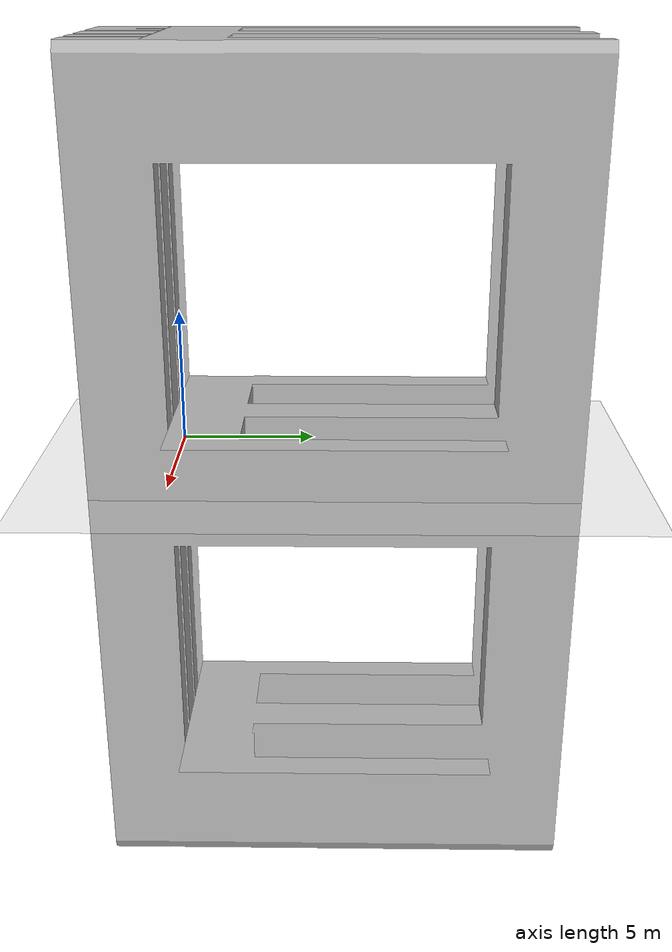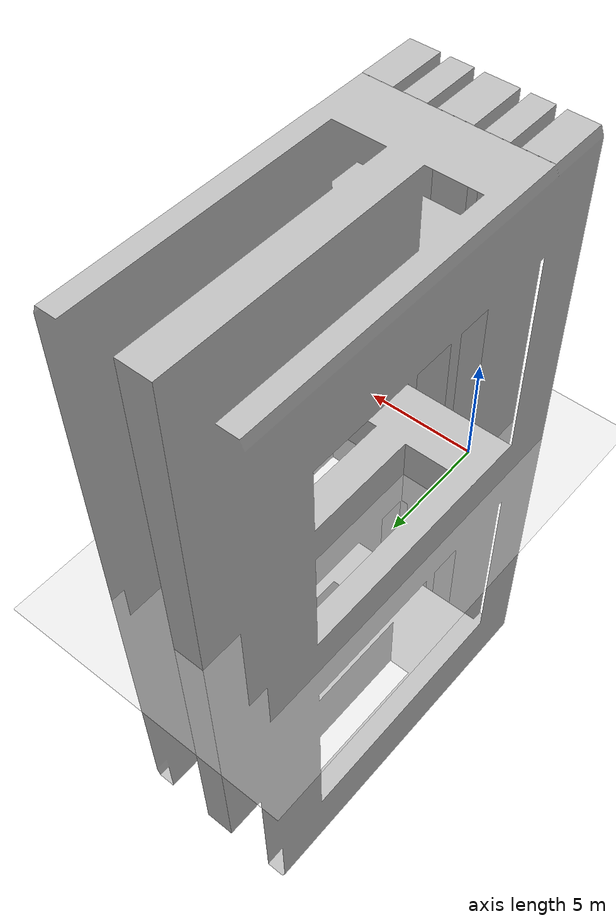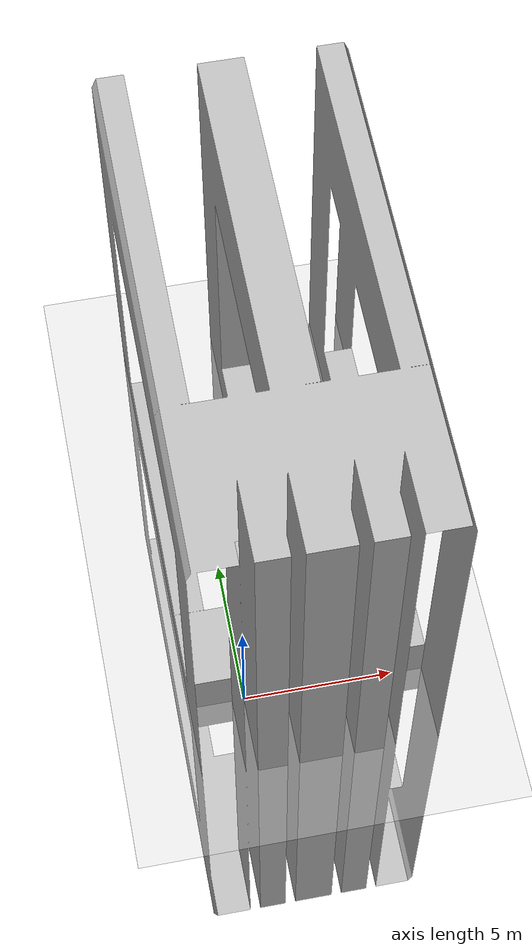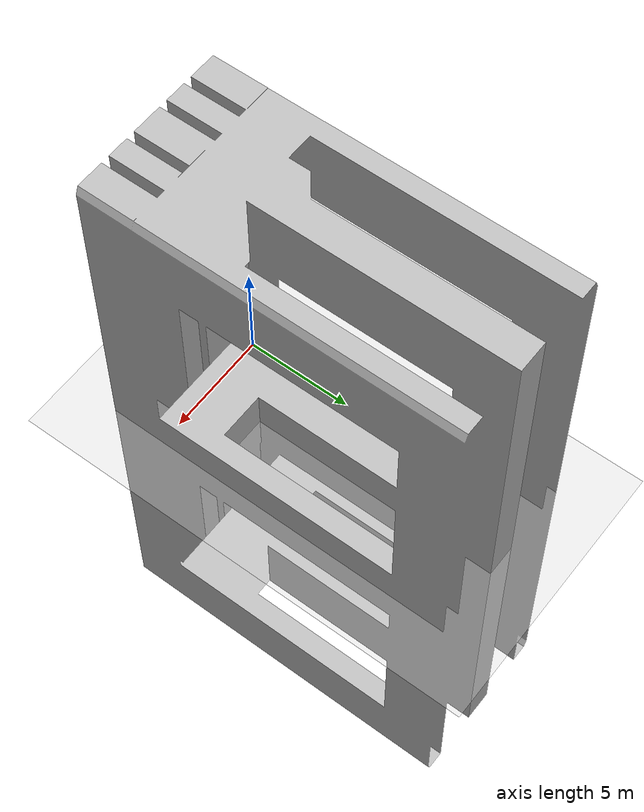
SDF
<?xml version="1.0" ?>
<sdf version="1.4">
  <world name="default">
    <physics type='ode'>
      <gravity>0 0 -9.81</gravity>
      <!-- max step size has to be a multiple of the desired task rate-->
      <max_step_size>0.001</max_step_size>
      <real_time_factor>1</real_time_factor>
    </physics>
    <!-- A global light source -->
    <include>
      <uri>model://sun</uri>
    </include>
    <!-- A ground plane -->
    <include>
      <uri>model://ground_plane</uri>
    </include>
    <include>
      <name>pallet</name>
      <uri>model://pallet22cm</uri>
      <pose>2.1 0.0 0 0 0 3.14</pose>
    </include>
  </world>
</sdf>

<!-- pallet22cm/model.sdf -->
<sdf version="1.4">
	<model name="pallet22cm">
		<static>true</static>
		<link name="link">
			<pose>0 0 0.06 0 0 0</pose>
			<collision name="collision">
				<geometry>
					<mesh>
						<uri>model://pallet_benchmark/mesh/pallet.dae</uri>
						<scale>1.0 11.81 2.5</scale>
					</mesh>
				</geometry>

			</collision>
			<visual name="visual">
				<geometry>
					<mesh>
						<uri>model://pallet_benchmark/mesh/pallet.dae</uri>
						<scale>1.0 11.81 2.5</scale>
					</mesh>
				</geometry>
			</visual>
		</link>
	</model>
</sdf>
